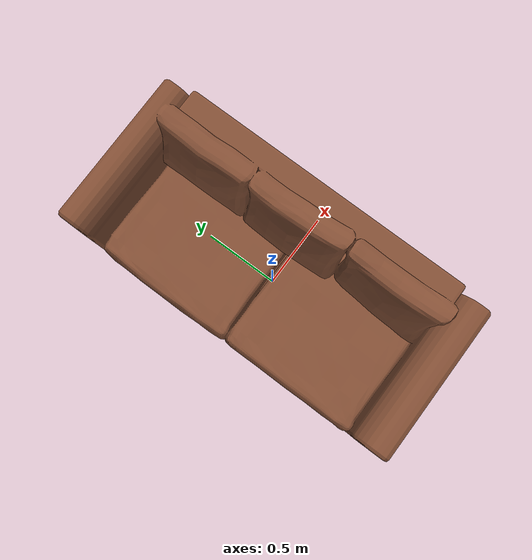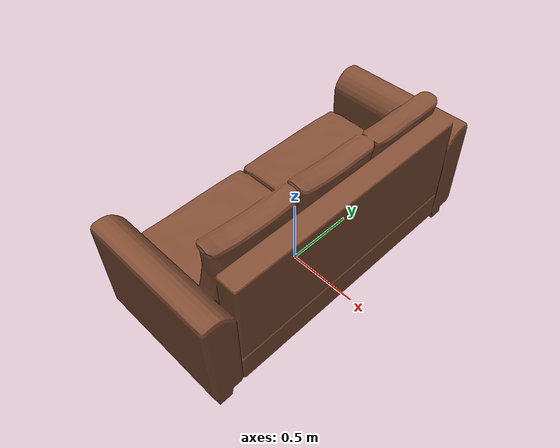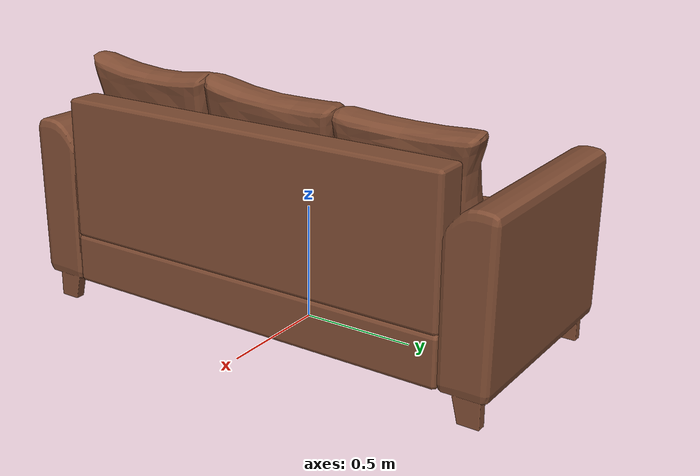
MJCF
<mujoco model="sofa">
  <compiler angle="radian" coordinate="local" meshdir="asset"/>
  <option gravity="0 0 -9.81"/>

  <asset>
    <!-- Load the sofa STL mesh -->
    <mesh name="sofa_mesh" file="sofa.stl"/>
    <!-- Material for the sofa -->
    <material name="sofa_material" rgba="0.5 0.3 0.2 1"/>
  </asset>

  <worldbody>
    <!-- Sofa body - fixed base (no freejoint, so it's static) -->
    <body name="sofa" pos="0 0 0">
      <!-- Visual geometry using the mesh -->
      <geom name="sofa_geom"
            type="mesh"
            mesh="sofa_mesh"
            material="sofa_material"
            contype="1"
            conaffinity="1"
            mass="50.0"
            density="100"/>
    </body>
  </worldbody>

  <keyframe>
    <key name="default"/>
  </keyframe>
</mujoco>
